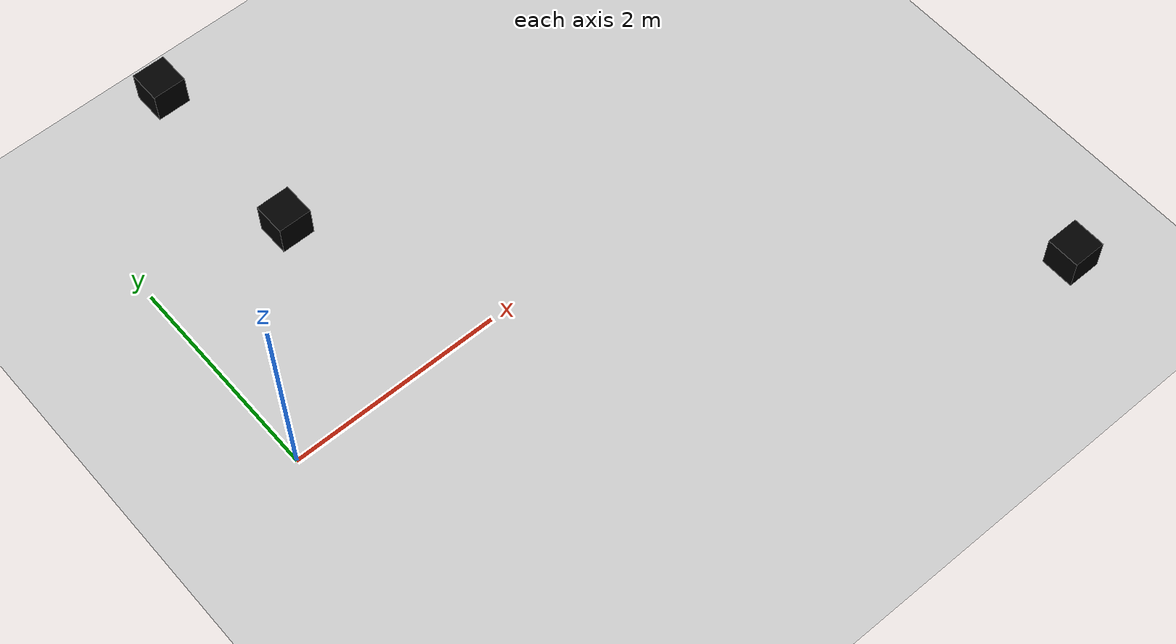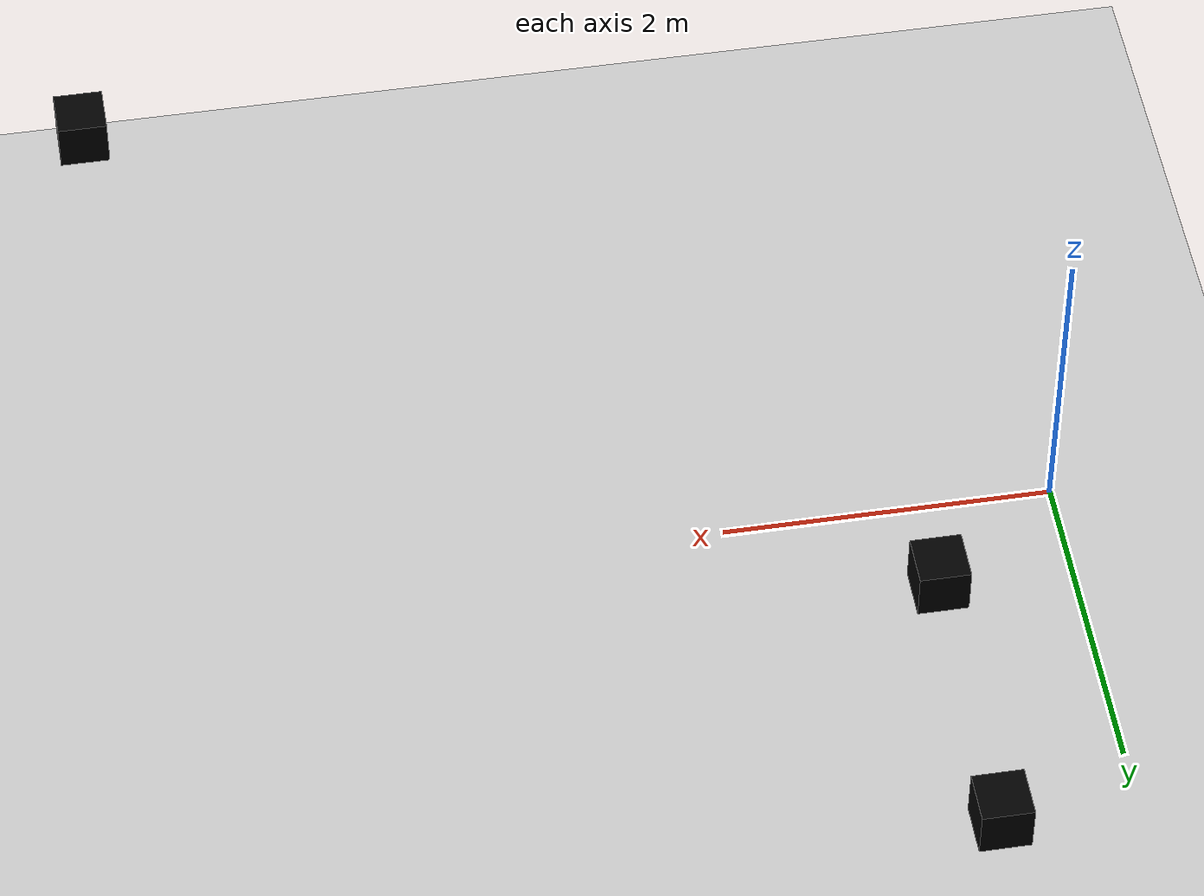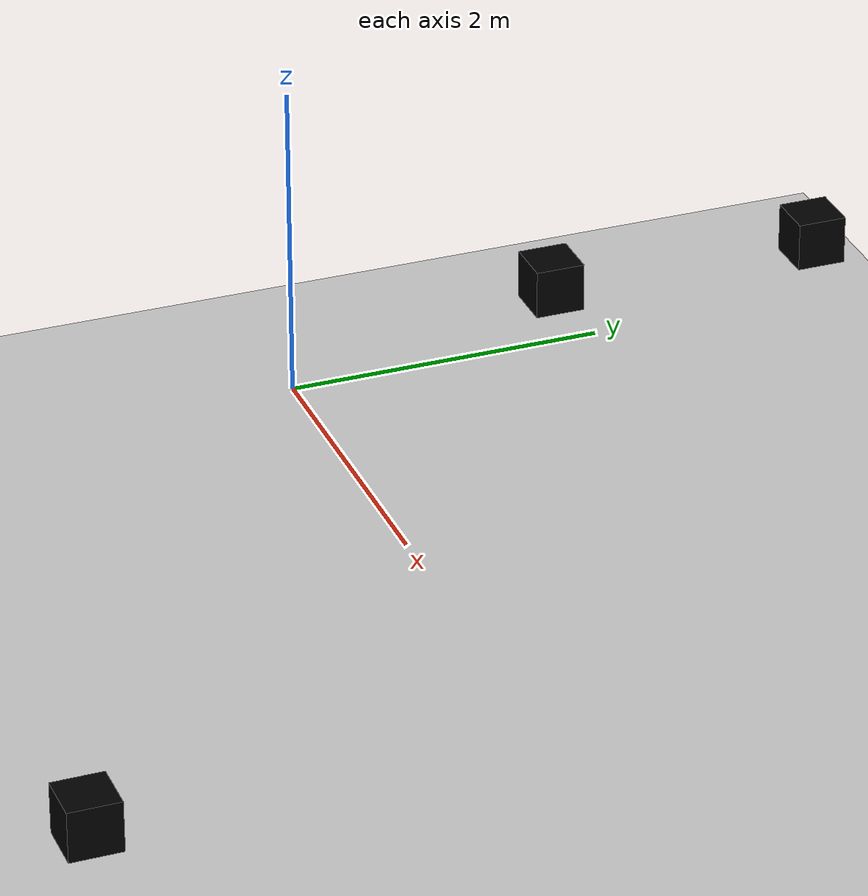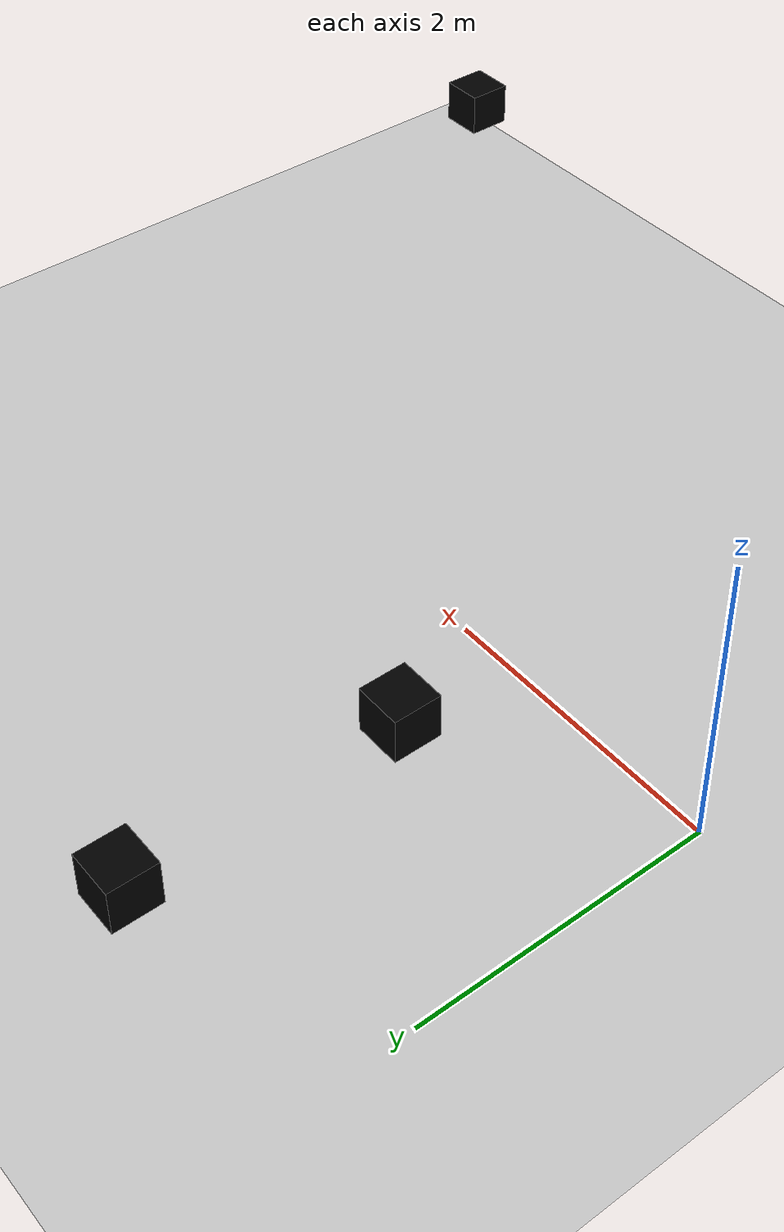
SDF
<?xml version="1.0" ?>
<sdf version="1.4">
  <!-- We use a custom world for the rrbot so that the camera angle is launched correctly -->

  <world name="default">
    <model name="track">
      <include>
        <uri>model://track_layout</uri>
      </include>
    </model>
    <model name="box_one">
      <pose>1 1.3 1 0 0 0</pose>
      <include>
        <uri>model://drc_box</uri>
      </include>
    </model>
    <model name="box_two">
      <pose>1 3 1 0 0 0</pose>
      <include>
        <uri>model://drc_box</uri>
      </include>
    </model>
    <model name="box_three">
      <pose>5.5 -3 1 0 0 0</pose>
      <include>
        <uri>model://drc_box</uri>
      </include>
    </model>
    <!-- Global light source -->
    <include>
      <uri>model://sun</uri>
    </include>

    <!-- Focus camera on tall pendulum -->
    <gui fullscreen='0'>
      <camera name='user_camera'>
        <pose>4.927360 -4.376610 3.740080 0.000000 0.275643 2.356190</pose>
        <view_controller>orbit</view_controller>
      </camera>
    </gui>

  </world>
</sdf>

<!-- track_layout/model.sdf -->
<sdf version="1.4">
  <model name="track_layout">
    <static>true</static>
    <link name="link">
      <collision name="collision">
        <geometry>
          <plane>
            <normal>0 0 1</normal>
            <size>20 8</size>
          </plane>
        </geometry>
        <surface>
          <friction>
            <ode>
              <mu>100</mu>
              <mu2>50</mu2>
            </ode>
          </friction>
        </surface>
      </collision>
      <visual name="visual">
        <cast_shadows>false</cast_shadows>
        <geometry>
          <plane>
            <normal>0 0 1</normal>
            <size>20 8</size>
          </plane>
        </geometry>
        <material>
          <script>
            <uri>model://track_layout/materials/scripts</uri>
            <uri>model://track_layout/materials/textures</uri>
            <name>track_layout/Image</name>
          </script>
        </material>
      </visual>
    </link>
  </model>
</sdf>

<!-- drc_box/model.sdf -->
<sdf version="1.4">
  <model name="track_layout">
    <static>false</static>

    <link name="link">
      <collision name="collision">
        <geometry>
          <box>
            <size>0.3 0.3 0.3</size>
	  </box>
        </geometry>
      </collision>

      <visual name="visual">
        <cast_shadows>true</cast_shadows>
	<material> <!-- Wheel material -->
          <ambient>0.55 0.28 0.77 1</ambient>
          <diffuse>0 0 0 1</diffuse>
          <specular>0 0 0 0</specular>
          <emissive>0 0 0 1</emissive>
        </material> <!-- End wheel material -->
	<geometry>
          <box>
            <size>0.3 0.3 0.3</size>
	  </box>
        </geometry>
      </visual>
    </link>
  </model>
</sdf>
